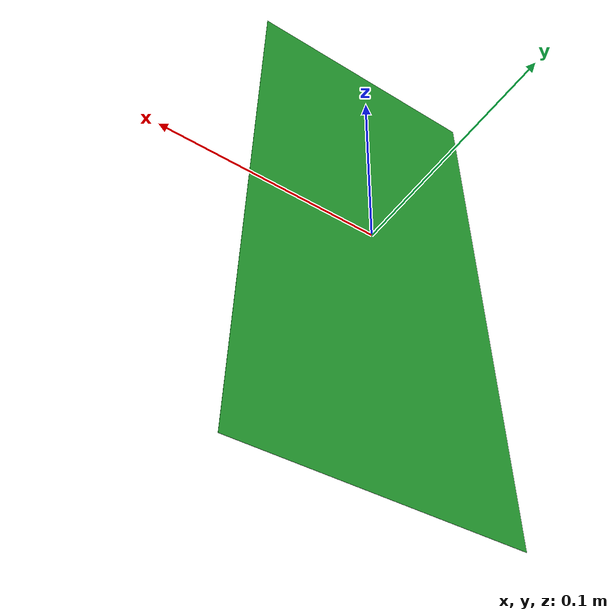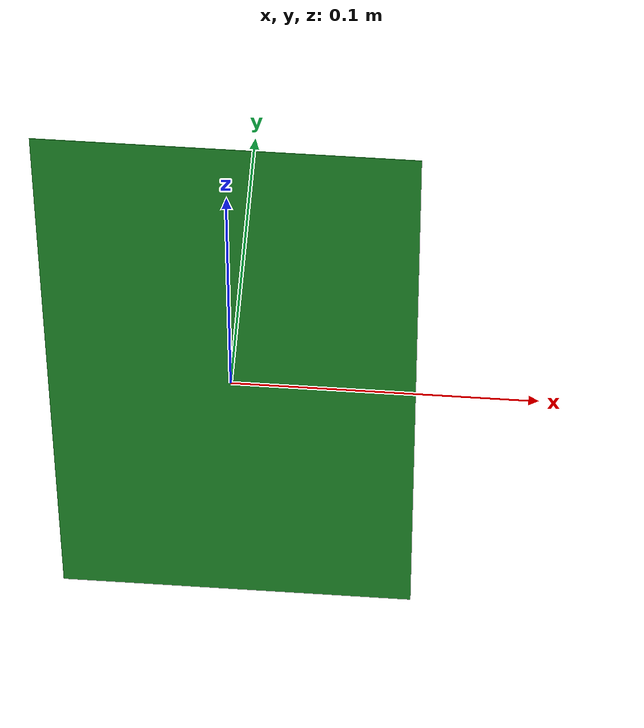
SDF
<?xml version='1.0'?>
<sdf version='1.6'>
  <model name='artag'>
    <link name='box'>
      <pose frame=''>0 0 0 0 -0 0</pose>
      <self_collide>0</self_collide>
      <enable_wind>0</enable_wind>
      <kinematic>0</kinematic>
      <gravity>0</gravity>
      <inertial>
        <mass>1000</mass>
        <pose frame=''>0 0 0 0 -0 0</pose>
        <inertia>
          <ixx>1</ixx>
          <ixy>0</ixy>
          <ixz>0</ixz>
          <iyy>1</iyy>
          <iyz>0</iyz>
          <izz>1</izz>
        </inertia>
      </inertial>
      <visual name='visual'>
        <geometry>
          <box>
            <size>0.12 0.000136 0.25</size>
          </box>
        </geometry>
        <material>
          <script>
            <uri>model://artag/materials/scripts</uri>
            <uri>model://artag/materials/textures</uri>
            <name>traffic_green</name>
          </script>
          <shader type='vertex'>
            <normal_map>__default__</normal_map>
          </shader>
          <ambient>1 1 1 1</ambient>
          <diffuse>1 1 1 1</diffuse>
          <specular>0 0 0 1</specular>
          <emissive>0 0 0 1</emissive>
          <lighting>0</lighting>
        </material>
        <pose frame=''>0 0 0 0 -0 0</pose>
        <transparency>0</transparency>
        <cast_shadows>1</cast_shadows>
      </visual>
    </link>
    <static>0</static>
    <allow_auto_disable>1</allow_auto_disable>
  </model>
</sdf>
